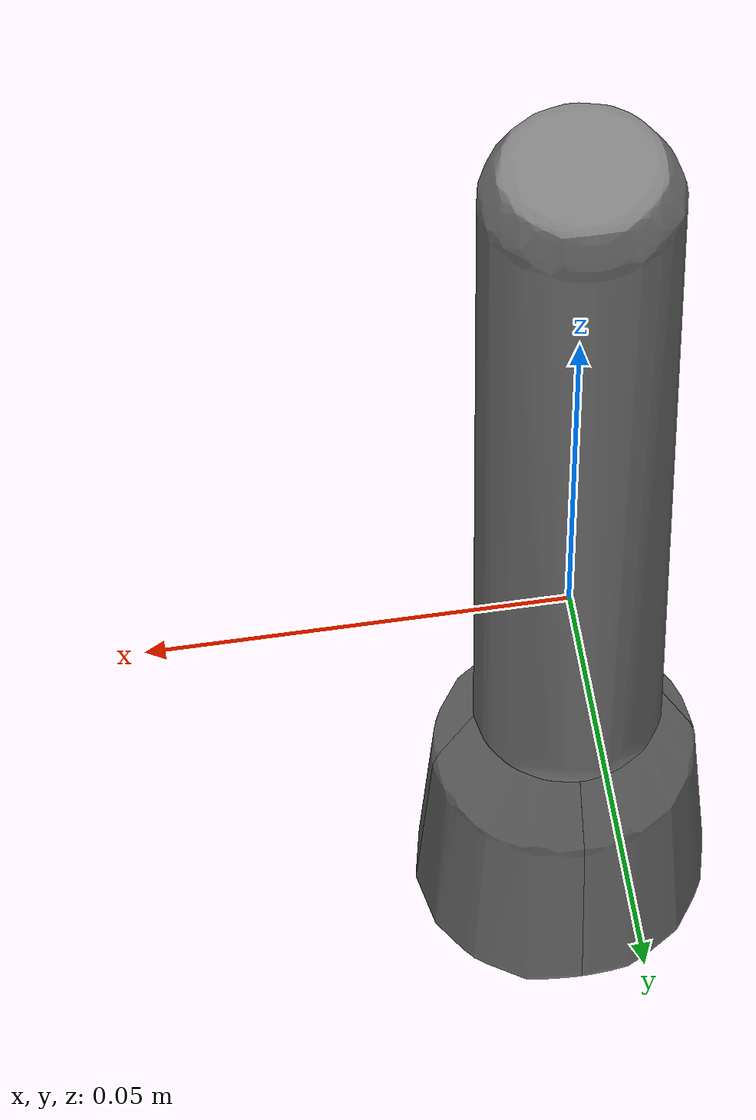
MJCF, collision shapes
<mujoco model="flashlight">
  <compiler meshdir="."/>

  <asset>
    <mesh name="flashlight" file="flashlight.stl"/>
    <mesh name="flashlight_collision_hull_000" file="flashlight_collision_hull_000.stl"/>
    <mesh name="flashlight_collision_hull_001" file="flashlight_collision_hull_001.stl"/>
    <mesh name="flashlight_collision_hull_002" file="flashlight_collision_hull_002.stl"/>
    <mesh name="flashlight_collision_hull_003" file="flashlight_collision_hull_003.stl"/>
    <mesh name="flashlight_collision_hull_004" file="flashlight_collision_hull_004.stl"/>
  </asset>

  <worldbody>
    <body name="object">
      <freejoint name="object_joint"/>
      <geom name="object_visual" type="mesh" mesh="flashlight"
            contype="0" conaffinity="0" group="2" rgba="0.9 0.9 0.8 1" mass="0"/>
      <geom name="flashlight_collision_hull_000_collision" type="mesh" mesh="flashlight_collision_hull_000"
            mass="0.0100" condim="6" friction="1.0 0.002 0.002" priority="1"/>
      <geom name="flashlight_collision_hull_001_collision" type="mesh" mesh="flashlight_collision_hull_001"
            mass="0.0100" condim="6" friction="1.0 0.002 0.002" priority="1"/>
      <geom name="flashlight_collision_hull_002_collision" type="mesh" mesh="flashlight_collision_hull_002"
            mass="0.0100" condim="6" friction="1.0 0.002 0.002" priority="1"/>
      <geom name="flashlight_collision_hull_003_collision" type="mesh" mesh="flashlight_collision_hull_003"
            mass="0.0100" condim="6" friction="1.0 0.002 0.002" priority="1"/>
      <geom name="flashlight_collision_hull_004_collision" type="mesh" mesh="flashlight_collision_hull_004"
            mass="0.0100" condim="6" friction="1.0 0.002 0.002" priority="1"/>
    </body>
  </worldbody>
</mujoco>
